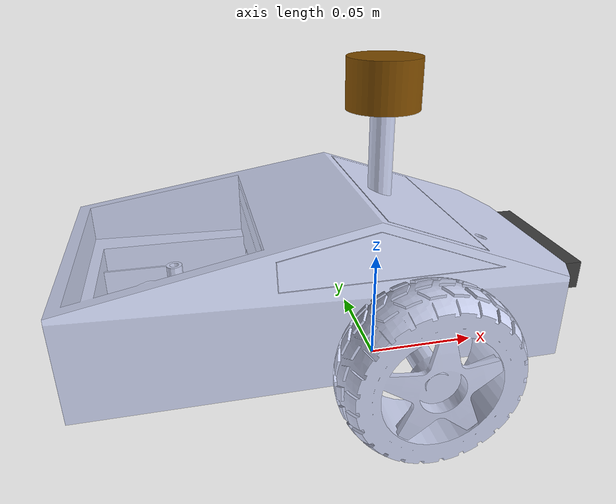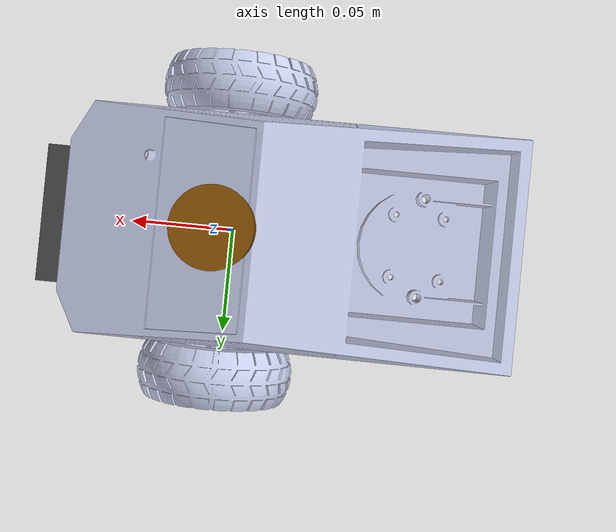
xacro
<robot name="mycar_sensor" xmlns:xacro="http://wiki.ros.org/xacro">
     <!-- 包含solidworks导出的urdf文件 -->
    <xacro:include filename="$(find car_gazebo)/urdf/car4.urdf" />

    <!--运动控制-->
    <xacro:include filename="gazebo/move.xacro" />
    <!--雷达控制-->
    <xacro:include filename="gazebo/laser.xacro" />
    <!--摄像头-->
    <!--kinect-->
</robot>

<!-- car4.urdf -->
<robot name="mycar">
	<link name="base_link">
		<inertial>
			<origin xyz="-0.0348720276746789 6.58769714060009E-06 0.048324291447554" rpy="0 0 0" />
			<mass value="0.178260195558643" />
			<inertia ixx="0.000230154941965817" ixy="-8.0361911216892E-08" ixz="-4.31818095340187E-06" iyy="0.000613729699395584" iyz="-1.44805733832134E-08" izz="0.000776596126087211" />
		</inertial>
		<visual>
			<origin xyz="0 0 0" rpy="0 0 0" />
			<geometry>
				<mesh filename="package://car_gazebo/meshes/base_link.STL" />
			</geometry>
			<material name="">
				<color rgba="0.792156862745098 0.819607843137255 0.933333333333333 1" />
			</material>
		</visual>
		<collision>
			<origin xyz="0 0 0" rpy="0 0 0" />
			<geometry>
				<mesh filename="package://car_gazebo/meshes/base_link.STL" />
			</geometry>
		</collision>
	</link>
	<gazebo reference="base_link">
		<material>
			Gazebo/Yellow
		</material>
	</gazebo>
	<link name="camera">
		<inertial>
			<origin xyz="3.5747084421697E-18 0.005 0.005" rpy="0 0 0" />
			<mass value="0.003" />
			<inertia ixx="4.99999999999999E-08" ixy="2.39286807599343E-25" ixz="2.91245220305501E-24" iyy="2.5E-07" iyz="-2.10611213030835E-24" izz="2.5E-07" />
		</inertial>
		<visual>
			<origin xyz="0 0 0" rpy="0 0 0" />
			<geometry>
				<mesh filename="package://car_gazebo/meshes/camera.STL" />
			</geometry>
			<material name="">
				<color rgba="0 1 0 1" />
			</material>
		</visual>
		<collision>
			<origin xyz="0 0 0" rpy="0 0 0" />
			<geometry>
				<mesh filename="package://car_gazebo/meshes/camera.STL" />
			</geometry>
		</collision>
	</link>
	<gazebo reference="camera">
		<material>
			Gazebo/Gray
		</material>
	</gazebo>
	<joint name="camera2base" type="fixed">
		<origin xyz="0.0708 0 0.03" rpy="1.5707963267949 0 1.5707963267949" />
		<parent link="base_link" />
		<child link="camera" />
		<axis xyz="0 0 0" />
	</joint>
	<link name="kinect">
		<inertial>
			<origin xyz="-3.82553607367537E-18 0.006 0.00499999999999999" rpy="0 0 0" />
			<mass value="0.0072" />
			<inertia ixx="1.464E-07" ixy="-6.38484852373091E-23" ixz="2.46364050217965E-23" iyy="2.22E-06" iyz="-1.74259382377838E-23" izz="2.2464E-06" />
		</inertial>
		<visual>
			<origin xyz="0 0 0" rpy="0 0 0" />
			<geometry>
				<mesh filename="package://car_gazebo/meshes/kinect.STL" />
			</geometry>
			<material name="">
				<color rgba="0.250980392156863 0.250980392156863 0.250980392156863 1" />
			</material>
		</visual>
		<collision>
			<origin xyz="0 0 0" rpy="0 0 0" />
			<geometry>
				<mesh filename="package://car_gazebo/meshes/kinect.STL" />
			</geometry>
		</collision>
	</link>
  <gazebo reference="kinect">
		<material>
			Gazebo/Green
		</material>
	</gazebo>
	<joint name="kinect2base" type="fixed">
		<origin xyz="0.0708 0 0.041" rpy="1.5707963267949 0 1.5707963267949" />
		<parent link="base_link" />
		<child link="kinect" />
		<axis xyz="0 0 0" />
	</joint>
	<link name="support">
		<inertial>
			<origin xyz="4.83117026110787E-35 0.04 8.67361737988404E-19" rpy="0 0 0" />
			<mass value="0.00628318530717959" />
			<inertia ixx="3.39030207199899E-06" ixy="-2.42841104008608E-39" ixz="9.09020517961032E-55" iyy="7.85398163397448E-08" iyz="2.29588740394978E-39" izz="3.39030207199899E-06" />
		</inertial>
		<visual>
			<origin xyz="0 0 0" rpy="0 0 0" />
			<geometry>
				<mesh filename="package://car_gazebo/meshes/support.STL" />
			</geometry>
			<material name="">
				<color rgba="0.792156862745098 0.819607843137255 0.933333333333333 1" />
			</material>
		</visual>
		<collision>
			<origin xyz="0 0 0" rpy="0 0 0" />
			<geometry>
				<mesh filename="package://car_gazebo/meshes/support.STL" />
			</geometry>
		</collision>
	</link>
	<joint name="support2base" type="fixed">
		<origin xyz="0 0 0.035" rpy="1.5707963267949 0 1.5707963267949" />
		<parent link="base_link" />
		<child link="support" />
		<axis xyz="0 0 0" />
	</joint>
	<link name="laser">
		<inertial>
			<origin xyz="1.44935107833236E-34 0.01 -2.60208521396521E-18" rpy="0 0 0" />
			<mass value="0.0141371669411541" />
			<inertia ixx="1.26645453847839E-06" ixy="-4.09794363014526E-39" ixz="2.56051138736021E-54" iyy="1.59043128087983E-06" iyz="-3.15672903293977E-39" izz="1.26645453847839E-06" />
		</inertial>
		<visual>
			<origin xyz="0 0 0" rpy="0 0 0" />
			<geometry>
				<mesh filename="package://car_gazebo/meshes/laser.STL" />
			</geometry>
			<material name="">
				<color rgba="0.5 0.3 0.0 1" />
			</material>
		</visual>
		<collision>
			<origin xyz="0 0 0" rpy="1.5707 0 0" />
			<geometry>
				<mesh filename="package://car_gazebo/meshes/laser.STL" />
			</geometry>
		</collision>
	</link>
  <gazebo reference="laser">
		<material>
			Gazebo/Gray
		</material>
	</gazebo>
	<joint name="laser2support" type="fixed">
		<origin xyz="0 0.08 0" rpy="0 0 0" />
		<parent link="support" />
		<child link="laser" />
		<axis xyz="0 0 0" />
	</joint>
	<link name="left_wheel">
		<inertial>
			<!-- xyz="0.0121431260340735 2.13116560308264E-14 -6.68042010598668E-15" -->
			<origin xyz="0.012 0 0" rpy="0 0 0" />
			<mass value="0.0511503917683624" />
			<inertia ixx="3.89734768733769E-05" ixy="1.13088754354773E-17" ixz="3.99998334192808E-17" iyy="2.19831293215253E-05" iyz="1.52863072021443E-18" izz="2.19834508240025E-05" />
		</inertial>
		<visual>
			<origin xyz="0 0 0" rpy="0 0 0" />
			<geometry>
				<mesh filename="package://car_gazebo/meshes/left_wheel.STL" />
			</geometry>
			<material name="">
				<color rgba="0.792156862745098 0.819607843137255 0.933333333333333 1" />
			</material>
		</visual>
		<collision>
			<origin xyz="0 0 0" rpy="0 0 0" />
			<geometry>
				<mesh filename="package://car_gazebo/meshes/left_wheel.STL" />
			</geometry>
		</collision>
	</link>
  <gazebo reference="left_wheel">
		<material>
			Gazebo/Black
		</material>
	</gazebo>
	<joint name="base_l_wheel_joint" type="continuous">
		<origin xyz="0 -0.0765 0.035" rpy="1.5707963267949 0 1.5707963267949" />
		<parent link="base_link" />
		<child link="left_wheel" />
		<axis xyz="-1 0 0" />
	</joint>
	<link name="right_wheel">
		<inertial>
			<!-- xyz="-0.0121431260340735 2.13102736975247E-14 6.71337985203024E-15" -->
			<origin xyz="-0.012 0 0" rpy="0 0 0" />
			<mass value="0.0511503917683625" />
			<inertia ixx="3.89734768733768E-05" ixy="-1.12813214048942E-17" ixz="4.03368892087235E-17" iyy="2.19831293215253E-05" iyz="-1.53472903941893E-18" izz="2.19834508240025E-05" />
		</inertial>
		<visual>
			<origin xyz="0 0 0" rpy="0 0 0" />
			<geometry>
				<mesh filename="package://car_gazebo/meshes/right_wheel.STL" />
			</geometry>
			<material name="">
				<color rgba="0.792156862745098 0.819607843137255 0.933333333333333 1" />
			</material>
		</visual>
		<collision>
			<origin xyz="0 0 0" rpy="0 0 0" />
			<geometry>
				<mesh filename="package://car_gazebo/meshes/right_wheel.STL" />
			</geometry>
		</collision>
	</link>
  <gazebo reference="right_wheel">
		<material>
			Gazebo/Black
		</material>
	</gazebo>
	<joint name="base_r_wheel_joint" type="continuous">
		<origin xyz="0 0.0765 0.035" rpy="1.5707963267949 0 1.5707963267949" />
		<parent link="base_link" />
		<child link="right_wheel" />
		<axis xyz="-1 0 0" />
	</joint>
	<link name="casterbracket">
		<inertial>
			<origin xyz="-0.00696318083900578 0.000458473678726753 -0.0112301340284787" rpy="0 0 0" />
			<mass value="0.00231472502614639" />
			<inertia ixx="2.79573383773959E-07" ixy="9.04702648525926E-09" ixz="-8.27510215395162E-08" iyy="2.9073577378625E-07" iyz="1.00447280132479E-08" izz="3.36271685165002E-07" />
		</inertial>
		<visual>
			<origin xyz="0 0 0" rpy="0 0 0" />
			<geometry>
				<mesh filename="package://car_gazebo/meshes/casterbracket.STL" />
			</geometry>
			<material name="">
				<color rgba="0.792156862745098 0.819607843137255 0.933333333333333 1" />
			</material>
		</visual>
		<collision>
			<origin xyz="0 0 0" rpy="0 0 0" />
			<geometry>
				<mesh filename="package://car_gazebo/meshes/casterbracket.STL" />
			</geometry>
		</collision>
	</link>
	<joint name="casterbracket2base" type="fixed">
		<origin xyz="-0.0867 0 0.0332" rpy="0 0 0" />
		<parent link="base_link" />
		<child link="casterbracket" />
		<axis xyz="0 0 -1" />
	</joint>
	<link name="casterwheel">
		<inertial>
			<origin xyz="1.38777878078145E-17 -1.84676829740928E-07 8.50818570163198E-07" rpy="0 0 0" />
			<mass value="0.00351970825534327" />
			<inertia ixx="1.84569835396339E-07" ixy="-4.24064557430265E-13" ixz="2.62213062059921E-23" iyy="2.95071423206008E-07" iyz="4.83363558906975E-12" izz="1.84549153267555E-07" />
		</inertial>
		<visual>
			<origin xyz="0 0 0" rpy="0 0 0" />
			<geometry>
				<mesh filename="package://car_gazebo/meshes/casterwheel.STL" />
			</geometry>
			<material name="">
				<color rgba="0.792156862745098 0.819607843137255 0.933333333333333 1" />
			</material>
		</visual>
		<collision>
			<origin xyz="0 0 0" rpy="0 0 0" />
			<geometry>
				<mesh filename="package://car_gazebo/meshes/casterwheel.STL" />
			</geometry>
		</collision>
	</link>
	<joint name="casterwheel2itsbracket" type="fixed">
		<origin xyz="-0.0155 0 -0.0207" rpy="0 0 0" />
		<parent link="casterbracket" />
		<child link="casterwheel" />
		<axis xyz="0 1 0" />
	</joint>
</robot>
